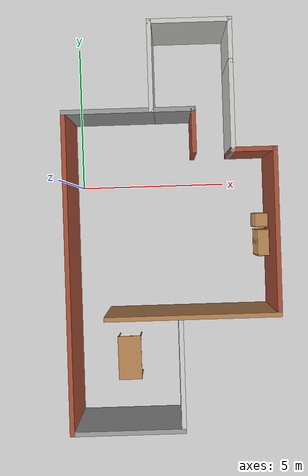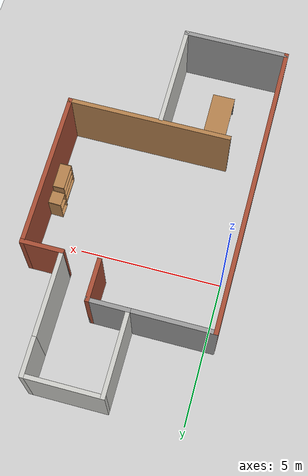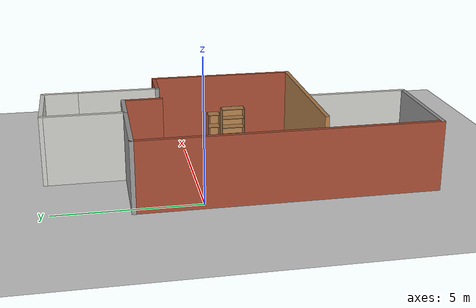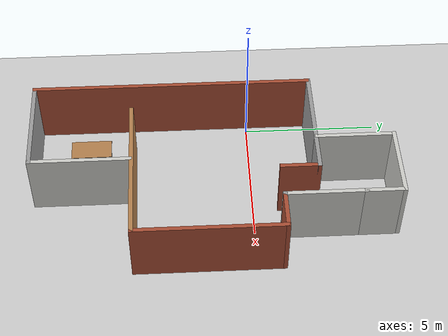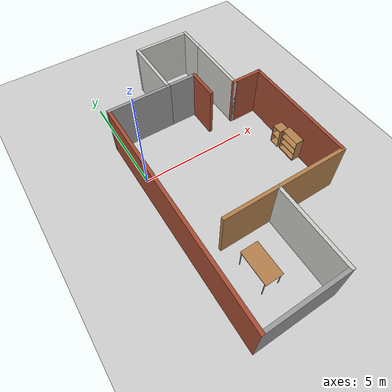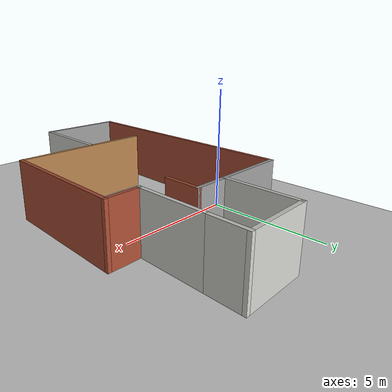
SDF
<sdf version="1.7">
 <world name="default">
  <light name="sun" type="directional">
   <pose>0 0 10 0 -0 0</pose>
   <diffuse>0.8 0.8 0.8 1</diffuse>
   <specular>0.2 0.2 0.2 1</specular>
   <attenuation>
    <range>1000</range>
    <constant>0.9</constant>
    <linear>0.01</linear>
    <quadratic>0.001</quadratic>
   </attenuation>
   <direction>-0.5 0.1 -0.9</direction>
   <spot><inner_angle>0</inner_angle><outer_angle>0</outer_angle><falloff>0</falloff></spot>
  </light>
  <model name="ground_plane">
   <static>1</static>
   <link name="link">
    <collision name="collision">
     <geometry><plane><normal>0 0 1</normal><size>100 100</size></plane></geometry>
     <surface>
      <contact><collide_bitmask>65535</collide_bitmask></contact>
      <friction><ode><mu>100</mu><mu2>50</mu2></ode></friction>
     </surface>
    </collision>
    <visual name="visual">
     <cast_shadows>0</cast_shadows>
     <geometry><plane><normal>0 0 1</normal><size>100 100</size></plane></geometry>
     <material>
      <script><uri>file://media/materials/scripts/gazebo.material</uri><name>Gazebo/Grey</name></script>
     </material>
    </visual>
   </link>
  </model>
  <gravity>0 0 -9.8</gravity>
  <magnetic_field>6e-06 2.3e-05 -4.2e-05</magnetic_field>
  <atmosphere type="adiabatic"/>
  <physics type="ode">
   <max_step_size>0.001</max_step_size>
   <real_time_factor>1</real_time_factor>
   <real_time_update_rate>1000</real_time_update_rate>
  </physics>
  <scene><ambient>0.4 0.4 0.4 1</ambient><background>0.7 0.7 0.7 1</background><shadows>1</shadows></scene>
  <audio><device>default</device></audio>
  <spherical_coordinates>
   <surface_model>EARTH_WGS84</surface_model>
   <latitude_deg>0</latitude_deg>
   <longitude_deg>0</longitude_deg>
   <elevation>0</elevation>
   <heading_deg>0</heading_deg>
  </spherical_coordinates>
  <model name="cabinet">
   <static>1</static>
   <link name="cabinet_bottom_plate">
    <inertial>
     <pose>0 0 -1 0 -0 0</pose>
     <inertia><ixx>2.05</ixx><ixy>0</ixy><ixz>0</ixz><iyy>2.05</iyy><iyz>0</iyz><izz>2.05</izz></inertia>
     <mass>25</mass>
    </inertial>
    <collision name="cabinet_bottom_plate_geom">
     <pose>0 0 0.01 0 -0 0</pose>
     <geometry><box><size>0.45 0.45 0.02</size></box></geometry>
    </collision>
    <visual name="cabinet_bottom_plate_geom_visual">
     <pose>0 0 0.01 0 -0 0</pose>
     <geometry><box><size>0.45 0.45 0.02</size></box></geometry>
     <material>
      <script><uri>file://media/materials/scripts/gazebo.material</uri><name>Gazebo/Wood</name></script>
     </material>
    </visual>
    <collision name="cabinet_bottom_plate_geom_cabinet_back_plate">
     <pose>0.235 0 0.51 0 -0 0</pose>
     <geometry><box><size>0.02 0.45 1.02</size></box></geometry>
    </collision>
    <visual name="cabinet_bottom_plate_geom_cabinet_back_plate_visual">
     <pose>0.235 0 0.51 0 -0 0</pose>
     <geometry><box><size>0.02 0.45 1.02</size></box></geometry>
     <material>
      <script><uri>file://media/materials/scripts/gazebo.material</uri><name>Gazebo/Wood</name></script>
     </material>
    </visual>
    <collision name="cabinet_bottom_plate_geom_cabinet_left_plate">
     <pose>0 0.235 0.51 0 -0 0</pose>
     <geometry><box><size>0.45 0.02 1.02</size></box></geometry>
    </collision>
    <visual name="cabinet_bottom_plate_geom_cabinet_left_plate_visual">
     <pose>0 0.235 0.51 0 -0 0</pose>
     <geometry><box><size>0.45 0.02 1.02</size></box></geometry>
     <material>
      <script><uri>file://media/materials/scripts/gazebo.material</uri><name>Gazebo/Wood</name></script>
     </material>
    </visual>
    <collision name="cabinet_bottom_plate_geom_cabinet_middle_plate">
     <pose>0 0 0.51 0 -0 0</pose>
     <geometry><box><size>0.45 0.45 0.02</size></box></geometry>
    </collision>
    <visual name="cabinet_bottom_plate_geom_cabinet_middle_plate_visual">
     <pose>0 0 0.51 0 -0 0</pose>
     <geometry><box><size>0.45 0.45 0.02</size></box></geometry>
     <material>
      <script><uri>file://media/materials/scripts/gazebo.material</uri><name>Gazebo/Wood</name></script>
     </material>
    </visual>
    <collision name="cabinet_bottom_plate_geom_cabinet_right_plate">
     <pose>0 -0.235 0.51 0 -0 0</pose>
     <geometry><box><size>0.45 0.02 1.02</size></box></geometry>
    </collision>
    <visual name="cabinet_bottom_plate_geom_cabinet_right_plate_visual">
     <pose>0 -0.235 0.51 0 -0 0</pose>
     <geometry><box><size>0.45 0.02 1.02</size></box></geometry>
     <material>
      <script><uri>file://media/materials/scripts/gazebo.material</uri><name>Gazebo/Wood</name></script>
     </material>
    </visual>
    <collision name="cabinet_bottom_plate_geom_cabinet_top_plate">
     <pose>0 0 1.01 0 -0 0</pose>
     <geometry><box><size>0.45 0.45 0.02</size></box></geometry>
    </collision>
    <visual name="cabinet_bottom_plate_geom_cabinet_top_plate_visual">
     <pose>0 0 1.01 0 -0 0</pose>
     <geometry><box><size>0.45 0.45 0.02</size></box></geometry>
     <material>
      <script><uri>file://media/materials/scripts/gazebo.material</uri><name>Gazebo/Wood</name></script>
     </material>
    </visual>
   </link>
   <pose>6.22057 -1.31832 0 0 0 -0.027185</pose>
  </model>
  <model name="bookshelf">
   <static>1</static>
   <link name="link">
    <inertial><mass>1</mass></inertial>
    <collision name="back">
     <pose>0 0.005 0.6 0 -0 0</pose>
     <geometry><box><size>0.9 0.01 1.2</size></box></geometry>
    </collision>
    <visual name="visual1">
     <pose>0 0.005 0.6 0 -0 0</pose>
     <geometry><box><size>0.9 0.01 1.2</size></box></geometry>
     <material>
      <script><uri>file://media/materials/scripts/gazebo.material</uri><name>Gazebo/Wood</name></script>
     </material>
    </visual>
    <collision name="left_side">
     <pose>0.45 -0.195 0.6 0 -0 0</pose>
     <geometry><box><size>0.02 0.4 1.2</size></box></geometry>
    </collision>
    <visual name="visual2">
     <pose>0.45 -0.195 0.6 0 -0 0</pose>
     <geometry><box><size>0.02 0.4 1.2</size></box></geometry>
     <material>
      <script><uri>file://media/materials/scripts/gazebo.material</uri><name>Gazebo/Wood</name></script>
     </material>
    </visual>
    <collision name="right_side">
     <pose>-0.45 -0.195 0.6 0 -0 0</pose>
     <geometry><box><size>0.02 0.4 1.2</size></box></geometry>
    </collision>
    <visual name="visual3">
     <pose>-0.45 -0.195 0.6 0 -0 0</pose>
     <geometry><box><size>0.02 0.4 1.2</size></box></geometry>
     <material>
      <script><uri>file://media/materials/scripts/gazebo.material</uri><name>Gazebo/Wood</name></script>
     </material>
    </visual>
    <collision name="bottom">
     <pose>0 -0.195 0.03 0 -0 0</pose>
     <geometry><box><size>0.88 0.4 0.06</size></box></geometry>
    </collision>
    <visual name="visual4">
     <pose>0 -0.195 0.03 0 -0 0</pose>
     <geometry><box><size>0.88 0.4 0.06</size></box></geometry>
     <material>
      <script><uri>file://media/materials/scripts/gazebo.material</uri><name>Gazebo/Wood</name></script>
     </material>
    </visual>
    <collision name="top">
     <pose>0 -0.195 1.19 0 -0 0</pose>
     <geometry><box><size>0.88 0.4 0.02</size></box></geometry>
    </collision>
    <visual name="visual5">
     <pose>0 -0.195 1.19 0 -0 0</pose>
     <geometry><box><size>0.88 0.4 0.02</size></box></geometry>
     <material>
      <script><uri>file://media/materials/scripts/gazebo.material</uri><name>Gazebo/Wood</name></script>
     </material>
    </visual>
    <collision name="low_shelf">
     <pose>0 -0.195 0.43 0 -0 0</pose>
     <geometry><box><size>0.88 0.4 0.02</size></box></geometry>
    </collision>
    <visual name="visual6">
     <pose>0 -0.195 0.43 0 -0 0</pose>
     <geometry><box><size>0.88 0.4 0.02</size></box></geometry>
     <material>
      <script><uri>file://media/materials/scripts/gazebo.material</uri><name>Gazebo/Wood</name></script>
     </material>
    </visual>
    <collision name="high_shelf">
     <pose>0 -0.195 0.8 0 -0 0</pose>
     <geometry><box><size>0.88 0.4 0.02</size></box></geometry>
    </collision>
    <visual name="visual7">
     <pose>0 -0.195 0.8 0 -0 0</pose>
     <geometry><box><size>0.88 0.4 0.02</size></box></geometry>
     <material>
      <script><uri>file://media/materials/scripts/gazebo.material</uri><name>Gazebo/Wood</name></script>
     </material>
    </visual>
   </link>
   <pose>6.43616 -2.09176 0 0 0 -1.56676</pose>
  </model>
  <model name="Table">
   <static>1</static>
   <link name="link">
    <collision name="surface">
     <pose>0 0 1 0 -0 0</pose>
     <geometry><box><size>1.5 0.8 0.03</size></box></geometry>
     <surface><friction><ode><mu>0.6</mu><mu2>0.6</mu2></ode></friction></surface>
    </collision>
    <visual name="visual1">
     <pose>0 0 1 0 -0 0</pose>
     <geometry><box><size>1.5 0.8 0.03</size></box></geometry>
     <material>
      <diffuse>1 1 1 1</diffuse>
      <script><uri>file://media/materials/scripts/gazebo.material</uri><name>Gazebo/Wood</name></script>
      <pbr>
       <metal>
        <albedo_map>https://fuel.ignitionrobotics.org/1.0/openrobotics/models/table/4/files/Table_Diffuse.jpg</albedo_map>
       </metal>
      </pbr>
     </material>
    </visual>
    <collision name="front_left_leg_collision">
     <pose>0.68 0.38 0.5 0 -0 0</pose>
     <geometry><cylinder><radius>0.02</radius><length>1</length></cylinder></geometry>
    </collision>
    <visual name="front_left_leg">
     <pose>0.68 0.38 0.5 0 -0 0</pose>
     <geometry><cylinder><radius>0.02</radius><length>1</length></cylinder></geometry>
     <material>
      <diffuse>0.5 0.5 0.5 1</diffuse>
      <script><uri>file://media/materials/scripts/gazebo.material</uri><name>Gazebo/Grey</name></script>
     </material>
    </visual>
    <collision name="front_right_leg_collision">
     <pose>0.68 -0.38 0.5 0 -0 0</pose>
     <geometry><cylinder><radius>0.02</radius><length>1</length></cylinder></geometry>
    </collision>
    <visual name="front_right_leg">
     <pose>0.68 -0.38 0.5 0 -0 0</pose>
     <geometry><cylinder><radius>0.02</radius><length>1</length></cylinder></geometry>
     <material>
      <diffuse>0.5 0.5 0.5 1</diffuse>
      <script><uri>file://media/materials/scripts/gazebo.material</uri><name>Gazebo/Grey</name></script>
     </material>
    </visual>
    <collision name="back_right_leg_collision">
     <pose>-0.68 -0.38 0.5 0 -0 0</pose>
     <geometry><cylinder><radius>0.02</radius><length>1</length></cylinder></geometry>
    </collision>
    <visual name="back_right_leg">
     <pose>-0.68 -0.38 0.5 0 -0 0</pose>
     <geometry><cylinder><radius>0.02</radius><length>1</length></cylinder></geometry>
     <material>
      <diffuse>0.5 0.5 0.5 1</diffuse>
      <script><uri>file://media/materials/scripts/gazebo.material</uri><name>Gazebo/Grey</name></script>
     </material>
    </visual>
    <collision name="back_left_leg_collision">
     <pose>-0.68 0.38 0.5 0 -0 0</pose>
     <geometry><cylinder><radius>0.02</radius><length>1</length></cylinder></geometry>
    </collision>
    <visual name="back_left_leg">
     <pose>-0.68 0.38 0.5 0 -0 0</pose>
     <geometry><cylinder><radius>0.02</radius><length>1</length></cylinder></geometry>
     <material>
      <diffuse>0.5 0.5 0.5 1</diffuse>
      <script><uri>file://media/materials/scripts/gazebo.material</uri><name>Gazebo/Grey</name></script>
     </material>
    </visual>
   </link>
   <pose>1.54023 -5.9406 0 0 0 -1.563</pose>
  </model>
  <model name="house2">
   <pose>3.12347 -1.41487 0 0 -0 0</pose>
   <link name="Wall_11">
    <collision name="Wall_11_Collision">
     <geometry><box><size>5.75 0.15 2.5</size></box></geometry>
     <pose>0 0 1.25 0 -0 0</pose>
    </collision>
    <visual name="Wall_11_Visual">
     <pose>0 0 1.25 0 -0 0</pose>
     <geometry><box><size>5.75 0.15 2.5</size></box></geometry>
     <material>
      <script><uri>file://media/materials/scripts/gazebo.material</uri><name>Gazebo/Wood</name></script>
      <ambient>1 1 1 1</ambient>
     </material>
     <meta><layer>0</layer></meta>
    </visual>
    <pose>0.6 -2.95 0 0 -0 3.14159</pose>
   </link>
   <link name="Wall_13">
    <collision name="Wall_13_Collision">
     <geometry><box><size>5.5 0.15 2.5</size></box></geometry>
     <pose>0 0 1.25 0 -0 0</pose>
    </collision>
    <visual name="Wall_13_Visual">
     <pose>0 0 1.25 0 -0 0</pose>
     <geometry><box><size>5.5 0.15 2.5</size></box></geometry>
     <material>
      <script><uri>file://media/materials/scripts/gazebo.material</uri><name>Gazebo/Bricks</name></script>
      <ambient>1 1 1 1</ambient>
     </material>
     <meta><layer>0</layer></meta>
    </visual>
    <pose>3.4 -0.275 0 0 -0 1.5708</pose>
   </link>
   <link name="Wall_14">
    <collision name="Wall_14_Collision">
     <geometry><box><size>1.5 0.15 2.5</size></box></geometry>
     <pose>0 0 1.25 0 -0 0</pose>
    </collision>
    <visual name="Wall_14_Visual">
     <pose>0 0 1.25 0 -0 0</pose>
     <geometry><box><size>1.5 0.15 2.5</size></box></geometry>
     <material>
      <script><uri>file://media/materials/scripts/gazebo.material</uri><name>Gazebo/Bricks</name></script>
      <ambient>1 1 1 1</ambient>
     </material>
     <meta><layer>0</layer></meta>
    </visual>
    <pose>2.725 2.4 0 0 -0 3.14159</pose>
   </link>
   <link name="Wall_16">
    <collision name="Wall_16_Collision">
     <geometry><box><size>0.15 0.15 2.5</size></box></geometry>
     <pose>0 0 1.25 0 -0 0</pose>
    </collision>
    <visual name="Wall_16_Visual">
     <pose>0 0 1.25 0 -0 0</pose>
     <geometry><box><size>0.15 0.15 2.5</size></box></geometry>
     <material>
      <script><uri>file://media/materials/scripts/gazebo.material</uri><name>Gazebo/Grey</name></script>
      <ambient>1 1 1 1</ambient>
     </material>
     <meta><layer>0</layer></meta>
    </visual>
    <pose>2.05 2.4 0 0 -0 0</pose>
   </link>
   <link name="Wall_17">
    <collision name="Wall_17_Collision">
     <geometry><box><size>3 0.15 2.5</size></box></geometry>
     <pose>0 0 1.25 0 -0 0</pose>
    </collision>
    <visual name="Wall_17_Visual">
     <pose>0 0 1.25 0 -0 0</pose>
     <geometry><box><size>3 0.15 2.5</size></box></geometry>
     <material>
      <script><uri>file://media/materials/scripts/gazebo.material</uri><name>Gazebo/CeilingTiled</name></script>
      <ambient>1 1 1 1</ambient>
     </material>
     <meta><layer>0</layer></meta>
    </visual>
    <pose>2.05 3.825 0 0 -0 1.5708</pose>
   </link>
   <link name="Wall_18">
    <collision name="Wall_18_Collision">
     <geometry><box><size>1.5 0.15 2.5</size></box></geometry>
     <pose>0 0 1.25 0 -0 0</pose>
    </collision>
    <visual name="Wall_18_Visual">
     <pose>0 0 1.25 0 -0 0</pose>
     <geometry><box><size>1.5 0.15 2.5</size></box></geometry>
     <material>
      <script><uri>file://media/materials/scripts/gazebo.material</uri><name>Gazebo/CeilingTiled</name></script>
      <ambient>1 1 1 1</ambient>
     </material>
     <meta><layer>0</layer></meta>
    </visual>
    <pose>2.05 5.925 0 0 -0 1.5708</pose>
   </link>
   <link name="Wall_19">
    <collision name="Wall_19_Collision">
     <geometry><box><size>2.75 0.15 2.5</size></box></geometry>
     <pose>0 0 1.25 0 -0 0</pose>
    </collision>
    <visual name="Wall_19_Visual">
     <pose>0 0 1.25 0 -0 0</pose>
     <geometry><box><size>2.75 0.15 2.5</size></box></geometry>
     <material>
      <script><uri>file://media/materials/scripts/gazebo.material</uri><name>Gazebo/CeilingTiled</name></script>
      <ambient>1 1 1 1</ambient>
     </material>
     <meta><layer>0</layer></meta>
    </visual>
    <pose>0.75 6.6 0 0 -0 3.14159</pose>
   </link>
   <link name="Wall_20">
    <collision name="Wall_20_Collision">
     <geometry><box><size>3 0.15 2.5</size></box></geometry>
     <pose>0 0 1.25 0 -0 0</pose>
    </collision>
    <visual name="Wall_20_Visual">
     <pose>0 0 1.25 0 -0 0</pose>
     <geometry><box><size>3 0.15 2.5</size></box></geometry>
     <material>
      <script><uri>file://media/materials/scripts/gazebo.material</uri><name>Gazebo/CeilingTiled</name></script>
      <ambient>1 1 1 1</ambient>
     </material>
     <meta><layer>0</layer></meta>
    </visual>
    <pose>-0.55 5.175 0 0 -0 -1.5708</pose>
   </link>
   <link name="Wall_21">
    <collision name="Wall_21_Collision">
     <geometry><box><size>1.5 0.15 2.5</size></box></geometry>
     <pose>0 0 1.25 0 -0 0</pose>
    </collision>
    <visual name="Wall_21_Visual">
     <pose>0 0 1.25 0 -0 0</pose>
     <geometry><box><size>1.5 0.15 2.5</size></box></geometry>
     <material>
      <script><uri>file://media/materials/scripts/gazebo.material</uri><name>Gazebo/Grey</name></script>
      <ambient>1 1 1 1</ambient>
     </material>
     <meta><layer>0</layer></meta>
    </visual>
    <pose>0.125 3.75 0 0 -0 0</pose>
   </link>
   <link name="Wall_22">
    <collision name="Wall_22_Collision">
     <geometry><box><size>1.5 0.15 2.5</size></box></geometry>
     <pose>0 0 1.25 0 -0 0</pose>
    </collision>
    <visual name="Wall_22_Visual">
     <pose>0 0 1.25 0 -0 0</pose>
     <geometry><box><size>1.5 0.15 2.5</size></box></geometry>
     <material>
      <script><uri>file://media/materials/scripts/gazebo.material</uri><name>Gazebo/Bricks</name></script>
      <ambient>1 1 1 1</ambient>
     </material>
     <meta><layer>0</layer></meta>
    </visual>
    <pose>0.8 3.075 0 0 -0 -1.5708</pose>
   </link>
   <link name="Wall_24">
    <collision name="Wall_24_Collision">
     <geometry><box><size>3 0.15 2.5</size></box></geometry>
     <pose>0 0 1.25 0 -0 0</pose>
    </collision>
    <visual name="Wall_24_Visual">
     <pose>0 0 1.25 0 -0 0</pose>
     <geometry><box><size>3 0.15 2.5</size></box></geometry>
     <material>
      <script><uri>file://media/materials/scripts/gazebo.material</uri><name>Gazebo/Grey</name></script>
      <ambient>1 1 1 1</ambient>
     </material>
     <meta><layer>0</layer></meta>
    </visual>
    <pose>-1.975 3.75 0 0 -0 3.14159</pose>
   </link>
   <link name="Wall_25">
    <collision name="Wall_25_Collision">
     <geometry><box><size>10.5 0.15 2.5</size></box></geometry>
     <pose>0 0 1.25 0 -0 0</pose>
    </collision>
    <visual name="Wall_25_Visual">
     <pose>0 0 1.25 0 -0 0</pose>
     <geometry><box><size>10.5 0.15 2.5</size></box></geometry>
     <material>
      <script><uri>file://media/materials/scripts/gazebo.material</uri><name>Gazebo/Bricks</name></script>
      <ambient>1 1 1 1</ambient>
     </material>
     <meta><layer>0</layer></meta>
    </visual>
    <pose>-3.4 -1.425 0 0 -0 -1.5708</pose>
   </link>
   <link name="Wall_26">
    <collision name="Wall_26_Collision">
     <geometry><box><size>3.75 0.15 2.5</size></box></geometry>
     <pose>0 0 1.25 0 -0 0</pose>
    </collision>
    <visual name="Wall_26_Visual">
     <pose>0 0 1.25 0 -0 0</pose>
     <geometry><box><size>3.75 0.15 2.5</size></box></geometry>
     <material>
      <script><uri>file://media/materials/scripts/gazebo.material</uri><name>Gazebo/Grey</name></script>
      <ambient>1 1 1 1</ambient>
     </material>
     <meta><layer>0</layer></meta>
    </visual>
    <pose>-1.6 -6.6 0 0 -0 0</pose>
   </link>
   <link name="Wall_27">
    <collision name="Wall_27_Collision">
     <geometry><box><size>3.75 0.15 2.5</size></box></geometry>
     <pose>0 0 1.25 0 -0 0</pose>
    </collision>
    <visual name="Wall_27_Visual">
     <pose>0 0 1.25 0 -0 0</pose>
     <geometry><box><size>3.75 0.15 2.5</size></box></geometry>
     <material>
      <script><uri>file://media/materials/scripts/gazebo.material</uri><name>Gazebo/CeilingTiled</name></script>
      <ambient>1 1 1 1</ambient>
     </material>
     <meta><layer>0</layer></meta>
    </visual>
    <pose>0.2 -4.8 0 0 -0 1.5708</pose>
   </link>
   <static>1</static>
  </model>
 </world>
</sdf>
